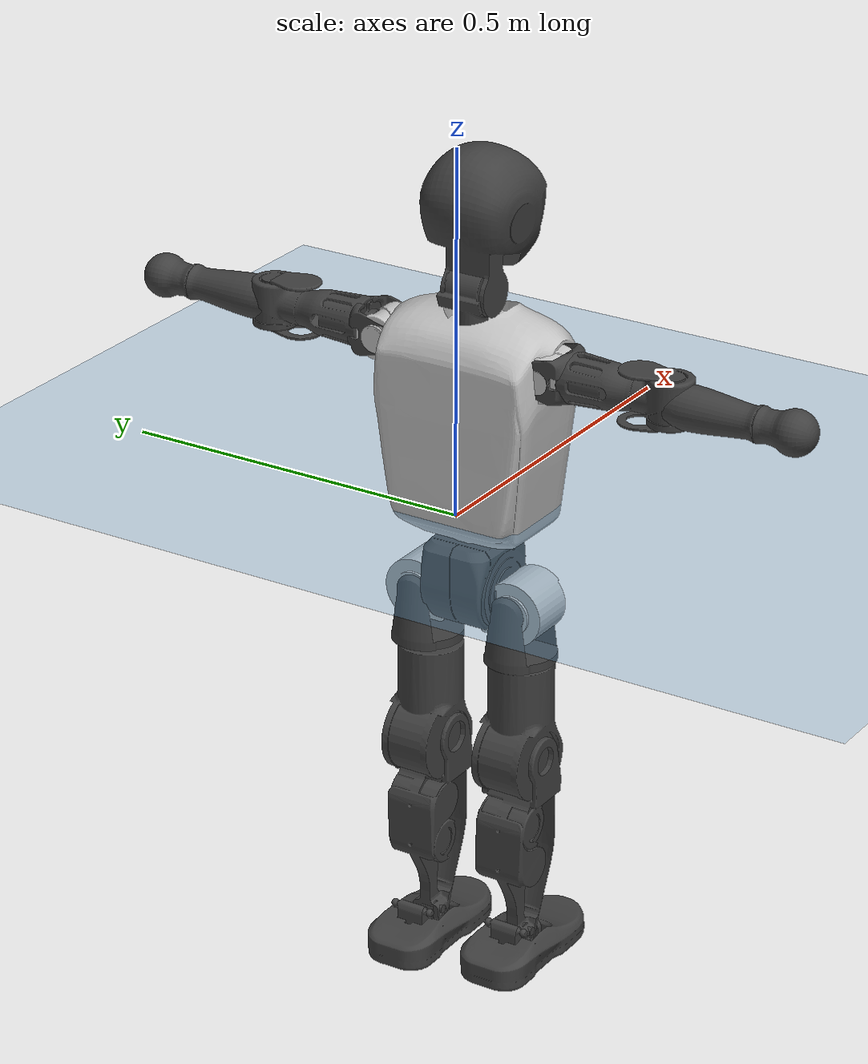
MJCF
<mujoco model="T1">
  <compiler angle="radian" assetdir="assets" balanceinertia="true" inertiafromgeom="false"/>

  <option timestep="0.005" density="1.2" viscosity="2e-05"/>

  <size nkey="1"/>

  <visual>
    <quality shadowsize="8192"/>
    <map shadowclip="0.5"/>
  </visual>

  <default>
    <default class="/">
      <joint armature="0.01" damping="0.01" frictionloss="0.1"/>
      <geom contype="0" conaffinity="0" group="1" solref="-1000 -80"/>
      <site size="0.01 0.005 0.005" group="5"/>
      <general forcelimited="true" biastype="affine" gainprm="25" biasprm="0 -25 -0.6"/>
      <default class="t1">
        <geom rgba="0.25 0.25 0.25 1"/>
        <default class="visual">
          <geom type="mesh" group="2"/>
        </default>
        <default class="collision">
          <geom group="3"/>
        </default>
        <default class="foot">
          <geom size="0.1115 0.05 0.015" type="box" condim="6" group="4" priority="1" solimp="0.015 1 0.015"/>
        </default>
        <default class="reward_collision_sphere">
          <geom group="5" rgba="1 0 0 1"/>
        </default>
      </default>
    </default>
  </default>

  <asset>
    <texture type="skybox" colorspace="auto" name="//unnamed_texture_0" builtin="gradient" rgb1="0.95 0.95 0.95" rgb2="0.95 0.95 0.95" width="100" height="600"/>
    <texture type="2d" colorspace="auto" name="texplane" builtin="checker" rgb1="0.345 0.575 0.748" rgb2="0.345 0.575 0.748" markrgb="1 1 1" width="512" height="512"/>
    <material name="MatPlane" class="/" texture="texplane" texuniform="true" texrepeat="2 2" specular="0.9"/>
    <mesh name="Trunk" class="/" file="Trunk.stl"/>
    <mesh name="H1" class="/" file="H1.stl"/>
    <mesh name="H2" class="/" file="H2.stl"/>
    <mesh name="AL1" class="/" file="AL1.stl"/>
    <mesh name="AL2" class="/" file="AL2.stl"/>
    <mesh name="AL3" class="/" file="AL3.stl"/>
    <mesh name="left_hand_link" class="/" file="left_hand_link.stl"/>
    <mesh name="AR1" class="/" file="AR1.stl"/>
    <mesh name="AR2" class="/" file="AR2.stl"/>
    <mesh name="AR3" class="/" file="AR3.stl"/>
    <mesh name="right_hand_link" class="/" file="right_hand_link.stl"/>
    <mesh name="Waist" class="/" file="Waist.stl"/>
    <mesh name="Hip_Pitch_Left" class="/" file="Hip_Pitch_Left.stl"/>
    <mesh name="Hip_Roll_Left" class="/" file="Hip_Roll_Left.stl"/>
    <mesh name="Hip_Yaw_Left" class="/" file="Hip_Yaw_Left.stl"/>
    <mesh name="Shank_Left" class="/" file="Shank_Left.stl"/>
    <mesh name="Ankle_Cross_Left" class="/" file="Ankle_Cross_Left.stl"/>
    <mesh name="left_foot_link" class="/" file="left_foot_link.stl"/>
    <mesh name="Hip_Pitch_Right" class="/" file="Hip_Pitch_Right.stl"/>
    <mesh name="Hip_Roll_Right" class="/" file="Hip_Roll_Right.stl"/>
    <mesh name="Hip_Yaw_Right" class="/" file="Hip_Yaw_Right.stl"/>
    <mesh name="Shank_Right" class="/" file="Shank_Right.stl"/>
    <mesh name="Ankle_Cross_Right" class="/" file="Ankle_Cross_Right.stl"/>
    <mesh name="right_foot_link" class="/" file="right_foot_link.stl"/>
  </asset>

  <worldbody>
    <geom name="floor" class="/" size="100 100 0.125" type="plane" group="0" material="MatPlane"/>
    <light name="toplight_shadow" class="/" pos="0 0 5" dir="0.0990148 0.0990148 -0.990148" type="directional" ambient="0.04 0.04 0.04" diffuse="0.55 0.55 0.55" specular="0.12 0.12 0.12"/>
    <light name="toplight_fill" class="/" pos="0 0 5" dir="0.0990148 0.0990148 -0.990148" type="directional" castshadow="false" ambient="0.04 0.04 0.04" diffuse="0.3 0.3 0.3" specular="0.08 0.08 0.08"/>
    <body name="trunk" childclass="t1" pos="-0.000400861 -0.00153009 0.000452676" quat="0.999999 -0.00122388 3.07305e-05 -0.000760597">
      <inertial pos="0.0366332 0.00087717 0.100523" quat="0.999945 0.00378278 -0.00971323 0.00118995" mass="5.62626" diaginertia="0.0109603 0.0136098 0.0515111"/>
      <joint name="//unnamed_joint_0" type="free" armature="0" damping="0" frictionloss="0"/>
      <geom name="//unnamed_geom_1" class="visual" rgba="0.76 0.76 0.76 1" mesh="Trunk"/>
      <geom name="//unnamed_geom_2" class="collision" size="0.0584805 0.077974 0.116961" pos="0.039429 0 0.116797" type="box"/>
      <geom name="//unnamed_geom_3" class="reward_collision_sphere" size="0.0896701" pos="0.039429 0 0.0973305"/>
      <geom name="//unnamed_geom_4" class="reward_collision_sphere" size="0.0116961" pos="0.039429 0.060245 0"/>
      <geom name="//unnamed_geom_5" class="reward_collision_sphere" size="0.0116961" pos="0.039429 -0.060245 0"/>
      <geom name="//unnamed_geom_6" class="reward_collision_sphere" size="0.0116961" pos="0.039429 0.0758379 0.175195"/>
      <geom name="//unnamed_geom_7" class="reward_collision_sphere" size="0.0116961" pos="0.039429 -0.0758379 0.175195"/>
      <site name="imu" pos="9.40712e-05 0.0127363 1.37012e-05" size="0.0077974"/>
      <camera name="track" pos="0 -1.41753 0" quat="0.707107 0.707107 0 0" mode="trackcom"/>
      <camera name="ego_camera" pos="0.0801724 0 0.408788" quat="-0.5 -0.5 0.5 0.5"/>
      <body name="H1" pos="0.0376424 0.00135294 0.239806" quat="0.999999 7.03991e-05 0.00100108 5.94312e-05">
        <inertial pos="-0.0021312 -0.00477068 0.0576415" quat="0.765754 -0.0102359 0.014428 0.64289" mass="0.221805" diaginertia="3.13308e-05 4.35337e-05 0.00013807"/>
        <joint name="AAHead_yaw" pos="0 0 0" axis="-0.0133233 0.00446244 0.999901" range="-1.61831 1.52951" armature="0.00756119" damping="0.0120881" frictionloss="0.0807903"/>
        <geom name="//unnamed_geom_8" class="visual" mesh="H1"/>
        <body name="H2" pos="-0.00073013 -0.00310959 0.0608409" quat="0.999999 -0.000118926 0.00119925 -0.000334325">
          <inertial pos="0.00228002 -0.00167947 0.0946759" quat="0.987879 0.105596 -0.0709796 -0.0889235" mass="0.292608" diaginertia="0.000240417 0.000350419 0.00148304"/>
          <joint name="Head_pitch" pos="0 0 0" axis="-0.00149884 -0.999947 0.0101602" range="-1.21659 0.342469" armature="0.00899163" damping="0.00198815" frictionloss="0.0596456"/>
          <geom name="//unnamed_geom_9" class="visual" mesh="H2"/>
          <geom name="//unnamed_geom_10" class="collision" size="0.0623792" pos="0.00657151 0 0.107064"/>
          <geom name="//unnamed_geom_11" class="reward_collision_sphere" size="0.0701766" pos="0.013143 0 0.0973305"/>
        </body>
      </body>
      <body name="AL1" pos="0.03722 0.0811643 0.216648" quat="1 1.22639e-05 0.00044508 -2.24778e-06">
        <inertial pos="0.00246465 0.0332153 -0.00358096" quat="0.501058 0.501541 -0.50139 0.49599" mass="0.246218" diaginertia="0.000161207 0.000224319 0.000250182"/>
        <joint name="Left_Shoulder_Pitch" pos="0 0 0" axis="0.00267718 0.99987 -0.0158705" stiffness="0.00865529" range="-3.32268 1.19206" armature="0.00685172" damping="0.00533555" frictionloss="0.0746815"/>
        <geom name="//unnamed_geom_12" class="visual" rgba="0.76 0.76 0.76 1" mesh="AL1"/>
        <body name="AL2" pos="0.00468935 0.0379706 2.58913e-05" quat="1 -0.000144229 -0.000155756 6.61901e-05">
          <inertial pos="0.00390944 0.0255448 0.00153121" quat="0.488893 0.509674 -0.486435 0.51439" mass="0.0802192" diaginertia="4.983e-05 6.20367e-05 0.000159476"/>
          <joint name="Left_Shoulder_Roll" pos="0 0 0" axis="-0.999956 0.00809612 0.00480047" range="-1.57031 1.78205" armature="0.00811872" damping="0.0102851" frictionloss="0.0812638"/>
          <geom name="//unnamed_geom_13" class="visual" mesh="AL2"/>
          <body name="AL3" pos="-0.000347144 0.0420486 0.00203247" quat="1 3.55219e-05 -0.000118503 0.000117979">
            <inertial pos="-0.00126313 0.0602619 0.000693578" quat="0.694892 0.719097 -0.00311818 0.00395111" mass="0.464788" diaginertia="0.001562 0.00221537 0.000556945"/>
            <joint name="Left_Elbow_Pitch" pos="0 0 0" axis="0.000990931 -0.999996 -0.0026196" range="-2.32323 2.22187" armature="0.00750952" damping="0" frictionloss="0.0636118"/>
            <geom name="//unnamed_geom_14" class="visual" mesh="AL3"/>
            <geom name="//unnamed_geom_15" class="collision" size="0.0233922 0.0584805" pos="0 0.0354383 0" quat="0.707105 0.707108 0 0" type="cylinder"/>
            <geom name="//unnamed_geom_16" class="reward_collision_sphere" size="0.0280706"/>
            <body name="left_hand_link" pos="-0.00192868 0.104782 0.000498957" quat="0.999999 -0.00025924 0.000248637 0.00106158">
              <inertial pos="-0.0022066 0.0776615 0.00221011" quat="0.705936 0.708174 0.0117922 0.00221287" mass="0.155725" diaginertia="0.00101292 0.00140238 0.000184843"/>
              <joint name="Left_Elbow_Yaw" pos="0 0 0" axis="0.000632994 -0.00402722 0.999992" range="-2.46456 -0.0517992" armature="0.00805964" damping="0.0171173" frictionloss="0.0782454"/>
              <geom name="//unnamed_geom_17" class="visual" mesh="left_hand_link"/>
              <geom name="//unnamed_geom_18" class="collision" size="0.0233922 0.0682273" pos="0 0.0921395 0" quat="0.707105 0.707108 0 0" type="cylinder"/>
              <geom name="//unnamed_geom_19" class="reward_collision_sphere" size="0.038987"/>
              <geom name="//unnamed_geom_20" class="reward_collision_sphere" size="0.0272909" pos="0 0.0779642 0"/>
              <geom name="//unnamed_geom_21" class="reward_collision_sphere" size="0.0272909" pos="0 0.152384 0"/>
            </body>
          </body>
        </body>
      </body>
      <body name="AR1" pos="0.0354504 -0.0697744 0.211669" quat="0.999998 -0.000999503 -0.00153863 0.000733389">
        <inertial pos="-0.00103925 -0.0342997 0.00201527" quat="0.504216 0.494005 -0.504032 0.497672" mass="0.241132" diaginertia="0.000161897 0.000219163 0.00024495"/>
        <joint name="Right_Shoulder_Pitch" pos="0 0 0" axis="-0.0154532 -0.999869 0.00474641" range="-1.21216 3.29179" armature="0.00683451" damping="0.0054627" frictionloss="0.0704556"/>
        <geom name="//unnamed_geom_22" class="visual" rgba="0.76 0.76 0.76 1" mesh="AR1"/>
        <body name="AR2" pos="-0.000295023 -0.0304923 0.00305331" quat="1 -0.000197877 -0.000310512 -0.000473129">
          <inertial pos="0.000149435 -0.0248828 -0.00102922" quat="0.511744 0.48793 -0.511727 0.488034" mass="0.0755335" diaginertia="4.90163e-05 6.28022e-05 0.000155925"/>
          <joint name="Right_Shoulder_Roll" pos="0 0 0" axis="-0.99994 0.00973862 0.00505968" range="-1.77296 1.53878" armature="0.00790318" damping="0.0113184" frictionloss="0.0705917"/>
          <geom name="//unnamed_geom_23" class="visual" mesh="AR2"/>
          <body name="AR3" pos="-0.00123292 -0.043811 5.73874e-06" quat="1 7.62751e-05 0.000615435 -0.000780977">
            <inertial pos="-0.00478421 -0.0599515 0.00260134" quat="0.715616 0.69848 0.00183432 0.00399128" mass="0.477608" diaginertia="0.0015284 0.00210452 0.00050584"/>
            <joint name="Right_Elbow_Pitch" pos="0 0 0" axis="0.00174035 0.999983 0.00564646" range="-2.31379 2.37068" armature="0.0075124" damping="0.00881826" frictionloss="0.084215"/>
            <geom name="//unnamed_geom_24" class="visual" mesh="AR3"/>
            <geom name="//unnamed_geom_25" class="collision" size="0.0233922 0.0584805" pos="0 -0.0354383 0" quat="0.707105 0.707108 0 0" type="cylinder"/>
            <geom name="//unnamed_geom_26" class="reward_collision_sphere" size="0.0280706"/>
            <body name="right_hand_link" pos="-0.00228956 -0.10462 -0.00254356" quat="1 0.000328197 -0.000105928 -0.000571114">
              <inertial pos="-0.00383229 -0.0751846 0.00296867" quat="0.708612 0.705592 0.00010184 -0.00289887" mass="0.168726" diaginertia="0.00111785 0.00152396 0.000190562"/>
              <joint name="Right_Elbow_Yaw" pos="0 0 0" axis="0.00600788 0.00117967 0.999981" range="-0.00520142 2.47988" armature="0.00700069" damping="0.0168683" frictionloss="0.0759478"/>
              <geom name="//unnamed_geom_27" class="visual" mesh="right_hand_link"/>
              <geom name="//unnamed_geom_28" class="collision" size="0.0233922 0.0682273" pos="0 -0.0921395 0" quat="0.707105 0.707108 0 0" type="cylinder"/>
              <geom name="//unnamed_geom_29" class="reward_collision_sphere" size="0.038987"/>
              <geom name="//unnamed_geom_30" class="reward_collision_sphere" size="0.0272909" pos="0 -0.0779642 0"/>
              <geom name="//unnamed_geom_31" class="reward_collision_sphere" size="0.0272909" pos="0 -0.152384 0"/>
            </body>
          </body>
        </body>
      </body>
      <body name="Waist" pos="0.0441618 0.00216924 -0.110693" quat="1 -0.000569481 9.12377e-05 0.000137341">
        <inertial pos="0.00547388 -0.0011472 0.00531344" quat="0.983797 5.37314e-05 -0.179239 0.00401731" mass="1.23433" diaginertia="0.000631327 0.000925859 0.00414136"/>
        <joint name="Waist" pos="0 0 0" axis="0.00877637 0.00863065 0.999924" range="-1.6058 1.52886" armature="0.00824572" damping="0.0231606" frictionloss="0.0817267"/>
        <geom name="//unnamed_geom_32" class="visual" mesh="Waist"/>
        <body name="Hip_Pitch_Left" pos="0.00121561 0.0720118 -0.000167102" quat="1 -3.36507e-06 1.27104e-05 -1.83593e-05">
          <inertial pos="-0.00106988 -0.00436066 -0.0153352" quat="0.973038 0.2295 0.0229028 0.00149288" mass="0.481276" diaginertia="0.000216672 0.000255568 0.00106598"/>
          <joint name="Left_Hip_Pitch" pos="0 0 0" axis="0.00433449 0.999944 -0.00962965" stiffness="0.00377218" range="-1.75697 1.53263" armature="0.00677493" damping="0.00965075" frictionloss="0.0766053"/>
          <geom name="//unnamed_geom_33" class="visual" rgba="0.76 0.76 0.76 1" mesh="Hip_Pitch_Left"/>
          <body name="Hip_Roll_Left" pos="-0.00284507 -0.00323068 -0.0196303" quat="0.999999 0.000926329 0.000331573 -0.000430877">
            <inertial pos="-0.00150408 -9.0107e-05 -0.0507768" quat="0.713097 -0.00379357 -0.00902844 0.700997" mass="0.180226" diaginertia="0.000205077 0.000271484 0.000455564"/>
            <joint name="Left_Hip_Roll" pos="0 0 0" axis="-0.999938 -0.00779696 0.00793666" stiffness="0.011713" range="-1.60977 0.142888" armature="0.00870523" damping="0.0184703" frictionloss="0.0846612"/>
            <geom name="//unnamed_geom_34" class="visual" mesh="Hip_Roll_Left"/>
            <geom name="//unnamed_geom_35" class="reward_collision_sphere" size="0.0428857"/>
            <body name="Hip_Yaw_Left" pos="-0.000437242 -0.00347333 -0.0854199" quat="1 -0.000510722 0.000194154 -0.000216218">
              <inertial pos="-0.00590106 -0.000188162 -0.0844537" quat="0.690836 -0.0372635 -0.0304893 0.721406" mass="1.05932" diaginertia="0.00331436 0.00481806 0.00235344"/>
              <joint name="Left_Hip_Yaw" pos="0 0 0" axis="-0.00322323 0.00201375 -0.999993" range="-1.06584 0.910386" armature="0.00822303" damping="0.0330626" frictionloss="0.0746874"/>
              <geom name="//unnamed_geom_36" class="visual" mesh="Hip_Yaw_Left"/>
              <geom name="//unnamed_geom_37" class="collision" size="0.038987 0.0623792" type="cylinder"/>
              <body name="Shank_Left" pos="-0.00854572 -0.00334558 -0.127823" quat="1 0.000100286 -0.000274238 0.000560809">
                <inertial pos="-0.00510058 0.00124394 -0.119517" quat="0.997238 0.000346448 -0.0362662 0.0648176" mass="0.791771" diaginertia="0.00414007 0.00598158 0.00160316"/>
                <joint name="Left_Knee_Pitch" pos="0 0 0" axis="0.000716746 0.999932 -0.0116682" range="0.0214401 2.33375" armature="0.00791833" damping="0" frictionloss="0.0680213"/>
                <geom name="//unnamed_geom_38" class="visual" mesh="Shank_Left"/>
                <geom name="//unnamed_geom_39" class="collision" size="0.038987 0.0584805" pos="0 0 -0.116797" type="cylinder"/>
                <geom name="//unnamed_geom_40" class="reward_collision_sphere" size="0.0506831"/>
                <body name="Ankle_Cross_Left" pos="-0.00399828 -0.00355395 -0.27155" quat="0.999999 -0.00132904 -0.000525581 0.000101925">
                  <inertial pos="0.000486076 -0.0028305 -0.00816167" quat="0.444018 0.551879 0.552507 0.439333" mass="0.0344555" diaginertia="3.57721e-06 4.73547e-06 9.77566e-06"/>
                  <joint name="Left_Ankle_Pitch" pos="0 0 0" axis="-0.000379939 0.999981 -0.00610338" stiffness="0.00637421" range="-0.880455 0.39999" armature="0.00870937" damping="0.0187031" frictionloss="0.0819249"/>
                  <geom name="//unnamed_geom_41" class="visual" mesh="Ankle_Cross_Left"/>
                  <body name="left_foot_link" pos="-0.00309967 0.000791986 -0.0144924" quat="0.999998 -0.00063227 -7.5558e-05 0.001805">
                    <inertial pos="0.00261819 -0.000392101 -0.0110297" quat="-0.00399766 0.617957 0.00322257 0.786195" mass="0.31849" diaginertia="0.000331157 0.000435288 0.00186213"/>
                    <joint name="Left_Ankle_Roll" pos="0 0 0" axis="-0.999988 0.00225404 0.00436907" stiffness="0.00665764" range="-0.393779 0.500052" armature="0.00833022" damping="0" frictionloss="0.0885563"/>
                    <geom name="//unnamed_geom_42" class="visual" mesh="left_foot_link"/>
                    <geom name="left_foot" class="foot" size="0.0979305 0.0377407 0.0107868" pos="0.00657151 0 -0.0145996"/>
                    <geom name="//unnamed_geom_44" class="reward_collision_sphere" size="0.0405465" pos="0.00657151 0 -0.0145996"/>
                    <geom name="//unnamed_geom_45" class="reward_collision_sphere" size="0.0233922" pos="0.0624293 -0.0163016 -0.0145996"/>
                    <geom name="//unnamed_geom_46" class="reward_collision_sphere" size="0.0233922" pos="-0.0460005 -0.0163016 -0.0145996"/>
                    <site name="left_foot" class="foot" pos="0.00657151 0 -0.0145996" size="0.0077974"/>
                  </body>
                </body>
              </body>
            </body>
          </body>
        </body>
        <body name="Hip_Pitch_Right" pos="0.00547333 -0.0748906 -0.000107817" quat="0.999999 0.00072994 0.000135367 -0.000796654">
          <inertial pos="0.00209055 0.0058412 -0.016673" quat="0.97519 -0.22058 0.0178202 -0.00555593" mass="0.487293" diaginertia="0.000213528 0.000267329 0.00104593"/>
          <joint name="Right_Hip_Pitch" pos="0 0 0" axis="0.0033301 -0.99998 -0.00528346" range="-1.61536 1.82158" armature="0.00786503" damping="0.0123166" frictionloss="0.07"/>
          <geom name="//unnamed_geom_47" class="visual" rgba="0.76 0.76 0.76 1" mesh="Hip_Pitch_Right"/>
          <body name="Hip_Roll_Right" pos="-0.0031305 0.00192133 -0.0181531" quat="1 -3.48557e-06 -1.53812e-05 -2.47995e-06">
            <inertial pos="0.00281493 0.00196523 -0.0523204" quat="0.707028 -0.00646354 -0.00866068 0.707103" mass="0.178085" diaginertia="0.000217268 0.000272313 0.000459161"/>
            <joint name="Right_Hip_Roll" pos="0 0 0" axis="-0.999914 -0.00676897 -0.01119" range="-0.198119 1.6494" armature="0.00875714" damping="0.0214391" frictionloss="0.0911853"/>
            <geom name="//unnamed_geom_48" class="visual" mesh="Hip_Roll_Right"/>
            <geom name="//unnamed_geom_49" class="reward_collision_sphere" size="0.0428857"/>
            <body name="Hip_Yaw_Right" pos="-0.00258607 -0.00192345 -0.080196" quat="1 -2.45056e-06 -0.000197033 -0.000142552">
              <inertial pos="-0.00676999 -0.000495768 -0.086624" quat="0.722405 -0.0131282 -0.0253935 0.690879" mass="1.05343" diaginertia="0.0033011 0.00457331 0.00236426"/>
              <joint name="Right_Hip_Yaw" pos="0 0 0" axis="0.00642451 -0.0216926 -0.999744" range="-0.989708 1.01126" armature="0.00812079" damping="0" frictionloss="0.0830107"/>
              <geom name="//unnamed_geom_50" class="visual" mesh="Hip_Yaw_Right"/>
              <geom name="//unnamed_geom_51" class="collision" size="0.038987 0.0623792" type="cylinder"/>
              <body name="Shank_Right" pos="-0.0119564 -0.00264274 -0.131589" quat="1 0.000220037 -0.000280868 -0.000102009">
                <inertial pos="-0.00293707 0.00132171 -0.117506" quat="0.999579 -0.00943877 -0.011686 -0.0248423" mass="0.805453" diaginertia="0.00414087 0.00614577 0.00168452"/>
                <joint name="Right_Knee_Pitch" pos="0 0 0" axis="0.00808726 -0.999922 0.00953013" stiffness="0.0175637" range="-2.3209 0.0016834" armature="0.00780284" damping="0" frictionloss="0.0749804"/>
                <geom name="//unnamed_geom_52" class="visual" mesh="Shank_Right"/>
                <geom name="//unnamed_geom_53" class="collision" size="0.038987 0.0584805" pos="0 0 -0.116797" type="cylinder"/>
                <geom name="//unnamed_geom_54" class="reward_collision_sphere" size="0.0506831"/>
                <body name="Ankle_Cross_Right" pos="0.00448153 -0.00203419 -0.26931" quat="1 0.00058785 0.000630714 0.000374509">
                  <inertial pos="-0.00407942 -0.000823219 -0.00752012" quat="0.443007 0.551033 0.550902 0.443412" mass="0.0341547" diaginertia="3.75942e-06 4.58399e-06 9.94927e-06"/>
                  <joint name="Right_Ankle_Pitch" pos="0 0 0" axis="0.000287298 -1 0.000323852" stiffness="0.00736123" range="-0.254111 0.874001" armature="0.00824435" damping="0.00643508" frictionloss="0.0695435"/>
                  <geom name="//unnamed_geom_55" class="visual" mesh="Ankle_Cross_Right"/>
                  <body name="right_foot_link" pos="6.27249e-06 -0.00411951 -0.0108879" quat="1 -4.22098e-05 0.000106598 -1.33397e-05">
                    <inertial pos="-0.000210137 -0.000933269 -0.00921122" quat="-0.00308015 0.621515 -0.00728373 0.783363" mass="0.299779" diaginertia="0.000314606 0.000417907 0.00193567"/>
                    <joint name="Right_Ankle_Roll" pos="0 0 0" axis="-0.999928 0.0117975 -0.00196565" range="-0.485934 0.417699" armature="0.00820209" damping="0.0110103" frictionloss="0.0925929"/>
                    <geom name="//unnamed_geom_56" class="visual" mesh="right_foot_link"/>
                    <geom name="right_foot" class="foot" size="0.0941899 0.0448822 0.0110905" pos="0.00657151 0 -0.0145996"/>
                    <geom name="//unnamed_geom_58" class="reward_collision_sphere" size="0.0311896"/>
                    <geom name="//unnamed_geom_59" class="reward_collision_sphere" size="0.0233922" pos="0.00657151 0 -0.0145996"/>
                    <geom name="//unnamed_geom_60" class="reward_collision_sphere" size="0.0233922" pos="0.0624293 0.0163016 -0.0145996"/>
                    <geom name="//unnamed_geom_61" class="reward_collision_sphere" size="0.0233922" pos="-0.0460005 0.0163016 -0.0145996"/>
                    <site name="right_foot" class="foot" pos="0.00657151 0 -0.0145996" size="0.0077974"/>
                  </body>
                </body>
              </body>
            </body>
          </body>
        </body>
      </body>
    </body>
  </worldbody>

  <contact>
    <pair class="/" geom1="floor" geom2="left_foot" name="//unnamed_contact_0"/>
    <pair class="/" geom1="floor" geom2="right_foot" name="//unnamed_contact_1"/>
  </contact>

  <actuator>
    <general name="AAHead_yaw" class="/" joint="AAHead_yaw" forcerange="-4.9545 4.9545" gainprm="21.4209" biasprm="0 -21.4209 -0.479551"/>
    <general name="Head_pitch" class="/" joint="Head_pitch" forcerange="-5.97874 5.97874" gainprm="21.4209" biasprm="0 -21.4209 -0.479551"/>
    <general name="Left_Shoulder_Pitch" class="/" joint="Left_Shoulder_Pitch" forcerange="-16.5705 16.5705" gainprm="21.4209" biasprm="0 -21.4209 -0.479551"/>
    <general name="Left_Shoulder_Roll" class="/" joint="Left_Shoulder_Roll" forcerange="-14.5227 14.5227" gainprm="21.4209" biasprm="0 -21.4209 -0.479551"/>
    <general name="Left_Elbow_Pitch" class="/" joint="Left_Elbow_Pitch" forcerange="-13.2413 13.2413" gainprm="21.4209" biasprm="0 -21.4209 -0.479551"/>
    <general name="Left_Elbow_Yaw" class="/" joint="Left_Elbow_Yaw" forcerange="-14.3348 14.3348" gainprm="21.4209" biasprm="0 -21.4209 -0.479551"/>
    <general name="Right_Shoulder_Pitch" class="/" joint="Right_Shoulder_Pitch" forcerange="-12.9063 12.9063" gainprm="21.4209" biasprm="0 -21.4209 -0.479551"/>
    <general name="Right_Shoulder_Roll" class="/" joint="Right_Shoulder_Roll" forcerange="-14.0012 14.0012" gainprm="21.4209" biasprm="0 -21.4209 -0.479551"/>
    <general name="Right_Elbow_Pitch" class="/" joint="Right_Elbow_Pitch" forcerange="-13.4571 13.4571" gainprm="21.4209" biasprm="0 -21.4209 -0.479551"/>
    <general name="Right_Elbow_Yaw" class="/" joint="Right_Elbow_Yaw" forcerange="-13.4021 13.4021" gainprm="21.4209" biasprm="0 -21.4209 -0.479551"/>
    <general name="Waist" class="/" joint="Waist" forcerange="-22.3945 22.3945" gainprm="21.4209" biasprm="0 -21.4209 -0.479551"/>
    <general name="Left_Hip_Pitch" class="/" joint="Left_Hip_Pitch" forcerange="-33.6867 33.6867" gainprm="21.4209" biasprm="0 -21.4209 -0.479551"/>
    <general name="Left_Hip_Roll" class="/" joint="Left_Hip_Roll" forcerange="-22.1264 22.1264" gainprm="21.4209" biasprm="0 -21.4209 -0.479551"/>
    <general name="Left_Hip_Yaw" class="/" joint="Left_Hip_Yaw" forcerange="-22.1942 22.1942" gainprm="21.4209" biasprm="0 -21.4209 -0.479551"/>
    <general name="Left_Knee_Pitch" class="/" joint="Left_Knee_Pitch" forcerange="-50.146 50.146" gainprm="21.4209" biasprm="0 -21.4209 -0.479551"/>
    <general name="Left_Ankle_Pitch" class="/" joint="Left_Ankle_Pitch" forcerange="-13.6097 13.6097" gainprm="21.4209" biasprm="0 -21.4209 -0.479551"/>
    <general name="Left_Ankle_Roll" class="/" joint="Left_Ankle_Roll" forcerange="-12.6924 12.6924" gainprm="21.4209" biasprm="0 -21.4209 -0.479551"/>
    <general name="Right_Hip_Pitch" class="/" joint="Right_Hip_Pitch" forcerange="-35.4369 35.4369" gainprm="21.4209" biasprm="0 -21.4209 -0.479551"/>
    <general name="Right_Hip_Roll" class="/" joint="Right_Hip_Roll" forcerange="-21.3333 21.3333" gainprm="21.4209" biasprm="0 -21.4209 -0.479551"/>
    <general name="Right_Hip_Yaw" class="/" joint="Right_Hip_Yaw" forcerange="-23.9097 23.9097" gainprm="21.4209" biasprm="0 -21.4209 -0.479551"/>
    <general name="Right_Knee_Pitch" class="/" joint="Right_Knee_Pitch" forcerange="-46.2945 46.2945" gainprm="21.4209" biasprm="0 -21.4209 -0.479551"/>
    <general name="Right_Ankle_Pitch" class="/" joint="Right_Ankle_Pitch" forcerange="-15.4143 15.4143" gainprm="21.4209" biasprm="0 -21.4209 -0.479551"/>
    <general name="Right_Ankle_Roll" class="/" joint="Right_Ankle_Roll" forcerange="-11.0634 11.0634" gainprm="21.4209" biasprm="0 -21.4209 -0.479551"/>
  </actuator>

  <sensor>
    <gyro site="imu" name="imu_angular_velocity"/>
    <velocimeter site="imu" name="imu_linear_velocity"/>
    <framelinvel objtype="site" objname="left_foot" name="left_foot_global_linear_velocity"/>
    <framelinvel objtype="site" objname="right_foot" name="right_foot_global_linear_velocity"/>
  </sensor>

  <keyframe>
    <key name="home" qpos="0 0 0.6385 1 0 0 0 0 0 0 1.4 0 -0.4 0 -1.4 0 0.4 0 -0.4 0 0 0.8 -0.4 0 0.4 0 0 -0.8 0.4 0"/>
  </keyframe>
</mujoco>
